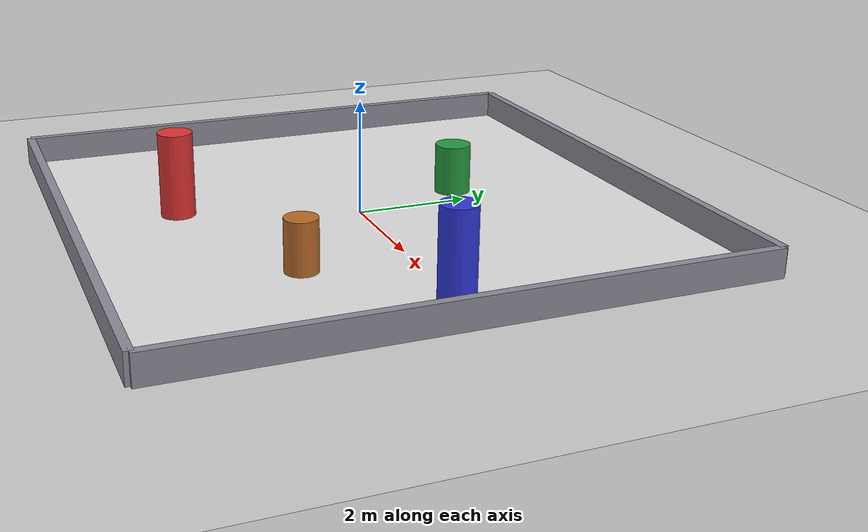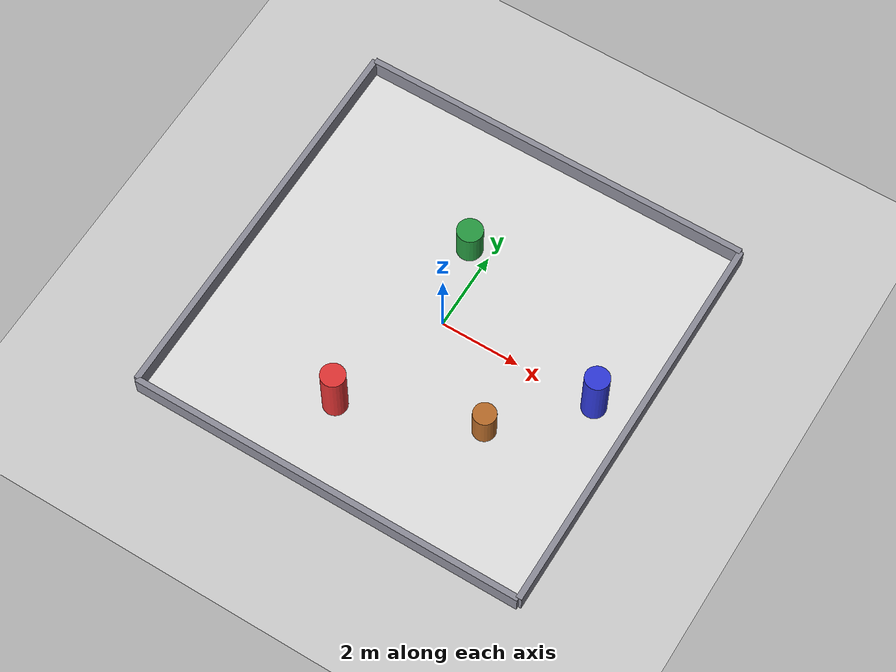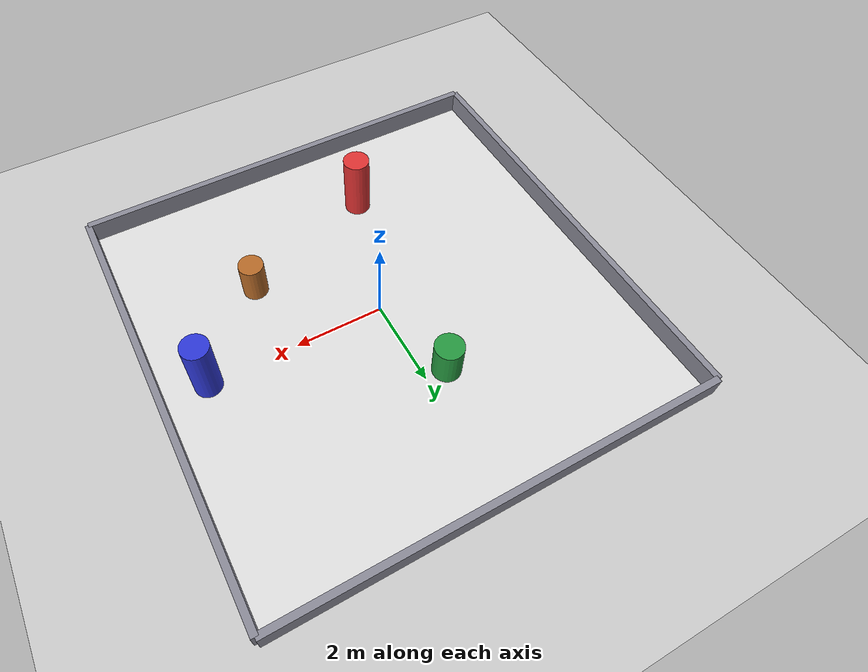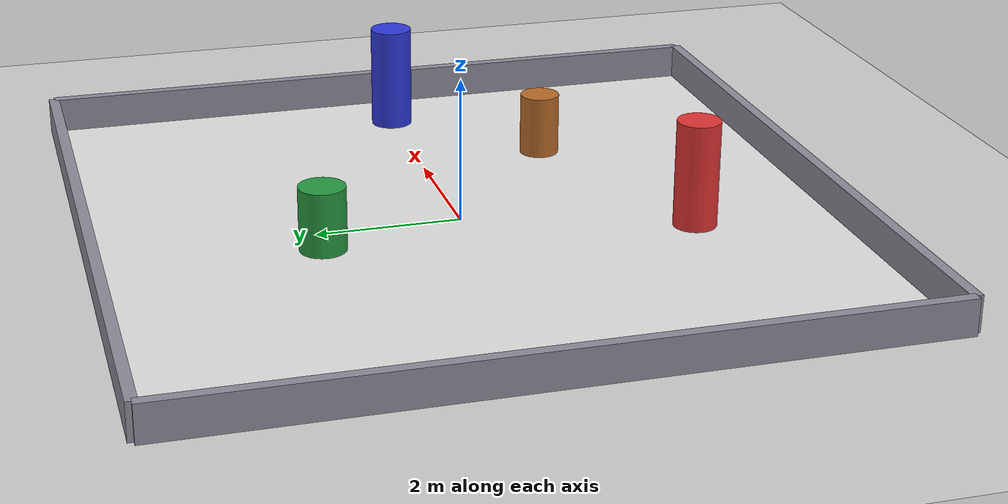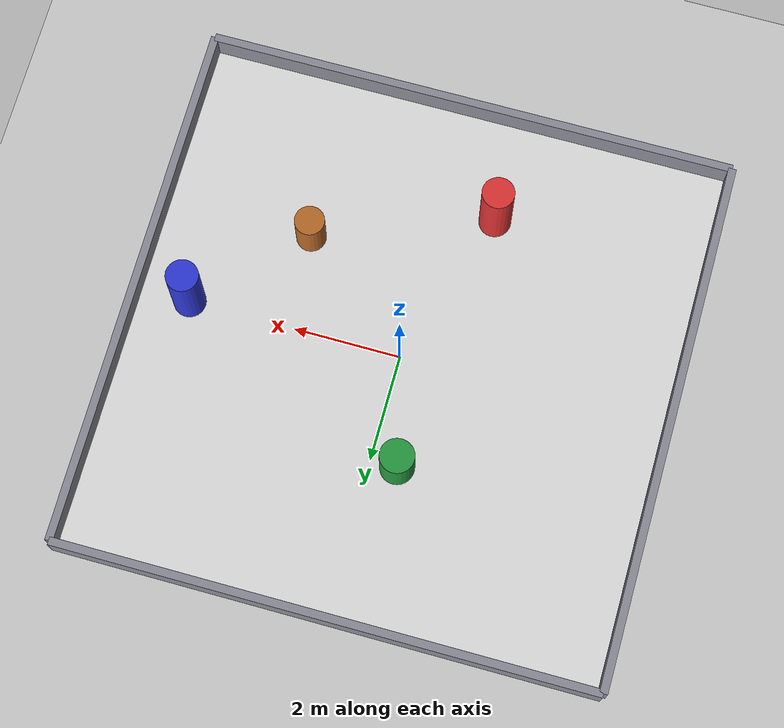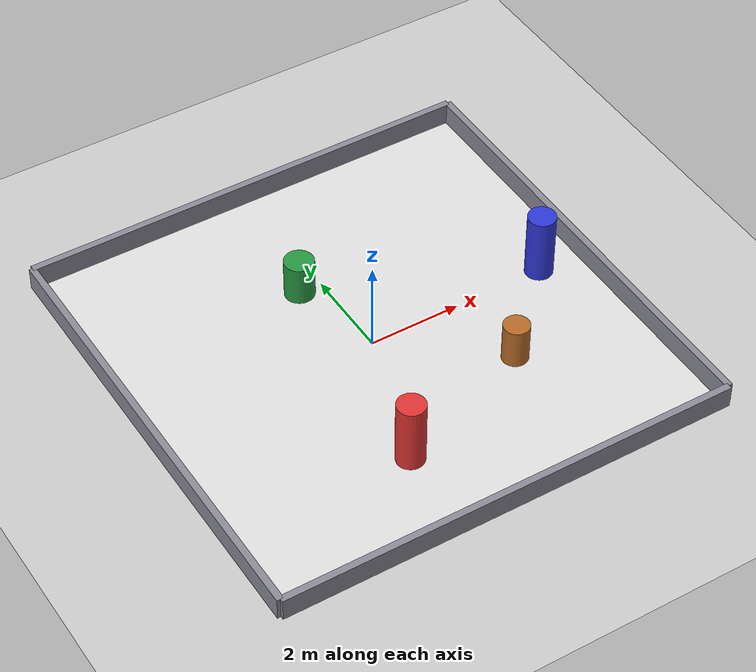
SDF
<?xml version="1.0"?>
<sdf version="1.6">
  <world name="dynamic_test">
    <gravity>0 0 -9.8</gravity>
    <magnetic_field>6e-06 2.3e-05 -4.2e-05</magnetic_field>
    <atmosphere type="adiabatic"/>

    <physics name="default_physics" type="ode">
      <max_step_size>0.001</max_step_size>
      <real_time_factor>1.0</real_time_factor>
      <real_time_update_rate>1000</real_time_update_rate>
    </physics>

    <scene>
      <ambient>0.45 0.45 0.45 1.0</ambient>
      <background>0.75 0.82 0.88 1.0</background>
      <shadows>false</shadows>
    </scene>

    <include>
      <uri>model://ground_plane</uri>
    </include>

    <include>
      <uri>model://sun</uri>
    </include>

    <model name="arena_floor">
      <static>true</static>
      <pose>0 0 0 0 0 0</pose>
      <link name="floor_link">
        <collision name="floor_collision">
          <geometry>
            <box>
              <size>10 10 0.02</size>
            </box>
          </geometry>
        </collision>
        <visual name="floor_visual">
          <geometry>
            <box>
              <size>10 10 0.02</size>
            </box>
          </geometry>
          <material>
            <ambient>0.88 0.88 0.88 1.0</ambient>
            <diffuse>0.88 0.88 0.88 1.0</diffuse>
          </material>
        </visual>
      </link>
    </model>

    <model name="north_wall">
      <static>true</static>
      <pose>0 5 0.25 0 0 0</pose>
      <link name="wall_link">
        <collision name="collision">
          <geometry>
            <box>
              <size>10 0.15 0.5</size>
            </box>
          </geometry>
        </collision>
        <visual name="visual">
          <geometry>
            <box>
              <size>10 0.15 0.5</size>
            </box>
          </geometry>
          <material>
            <ambient>0.55 0.55 0.60 1.0</ambient>
            <diffuse>0.55 0.55 0.60 1.0</diffuse>
          </material>
        </visual>
      </link>
    </model>

    <model name="south_wall">
      <static>true</static>
      <pose>0 -5 0.25 0 0 0</pose>
      <link name="wall_link">
        <collision name="collision">
          <geometry>
            <box>
              <size>10 0.15 0.5</size>
            </box>
          </geometry>
        </collision>
        <visual name="visual">
          <geometry>
            <box>
              <size>10 0.15 0.5</size>
            </box>
          </geometry>
          <material>
            <ambient>0.55 0.55 0.60 1.0</ambient>
            <diffuse>0.55 0.55 0.60 1.0</diffuse>
          </material>
        </visual>
      </link>
    </model>

    <model name="east_wall">
      <static>true</static>
      <pose>5 0 0.25 0 0 0</pose>
      <link name="wall_link">
        <collision name="collision">
          <geometry>
            <box>
              <size>0.15 10 0.5</size>
            </box>
          </geometry>
        </collision>
        <visual name="visual">
          <geometry>
            <box>
              <size>0.15 10 0.5</size>
            </box>
          </geometry>
          <material>
            <ambient>0.55 0.55 0.60 1.0</ambient>
            <diffuse>0.55 0.55 0.60 1.0</diffuse>
          </material>
        </visual>
      </link>
    </model>

    <model name="west_wall">
      <static>true</static>
      <pose>-5 0 0.25 0 0 0</pose>
      <link name="wall_link">
        <collision name="collision">
          <geometry>
            <box>
              <size>0.15 10 0.5</size>
            </box>
          </geometry>
        </collision>
        <visual name="visual">
          <geometry>
            <box>
              <size>0.15 10 0.5</size>
            </box>
          </geometry>
          <material>
            <ambient>0.55 0.55 0.60 1.0</ambient>
            <diffuse>0.55 0.55 0.60 1.0</diffuse>
          </material>
        </visual>
      </link>
    </model>

    <model name="static_cylinder_1">
      <static>true</static>
      <pose>-0.5 2.0 0.45 0 0 0</pose>
      <link name="obstacle_link">
        <collision name="collision">
          <geometry>
            <cylinder>
              <radius>0.32</radius>
              <length>0.9</length>
            </cylinder>
          </geometry>
        </collision>
        <visual name="visual">
          <geometry>
            <cylinder>
              <radius>0.32</radius>
              <length>0.9</length>
            </cylinder>
          </geometry>
          <material>
            <ambient>0.15 0.60 0.25 1.0</ambient>
            <diffuse>0.15 0.60 0.25 1.0</diffuse>
          </material>
        </visual>
      </link>
    </model>

    <model name="static_cylinder_2">
      <static>true</static>
      <pose>2.2 -1.8 0.45 0 0 0</pose>
      <link name="obstacle_link">
        <collision name="collision">
          <geometry>
            <cylinder>
              <radius>0.28</radius>
              <length>0.9</length>
            </cylinder>
          </geometry>
        </collision>
        <visual name="visual">
          <geometry>
            <cylinder>
              <radius>0.28</radius>
              <length>0.9</length>
            </cylinder>
          </geometry>
          <material>
            <ambient>0.72 0.42 0.16 1.0</ambient>
            <diffuse>0.72 0.42 0.16 1.0</diffuse>
          </material>
        </visual>
      </link>
    </model>

    <model name="obs1">
      <pose>-1.0 -3.0 0.75 0 0 0</pose>
      <link name="obs1_link">
        <gravity>true</gravity>
        <kinematic>true</kinematic>
        <self_collide>false</self_collide>
        <inertial>
          <mass>12.0</mass>
          <inertia>
            <ixx>2.52</ixx>
            <ixy>0.0</ixy>
            <ixz>0.0</ixz>
            <iyy>2.52</iyy>
            <iyz>0.0</iyz>
            <izz>0.54</izz>
          </inertia>
        </inertial>
        <collision name="collision">
          <geometry>
            <cylinder>
              <radius>0.3</radius>
              <length>1.5</length>
            </cylinder>
          </geometry>
          <surface>
            <friction>
              <ode>
                <mu>10.0</mu>
                <mu2>10.0</mu2>
                <slip1>0.0</slip1>
                <slip2>0.0</slip2>
              </ode>
            </friction>
            <bounce>
              <restitution_coefficient>0.0</restitution_coefficient>
              <threshold>1000000.0</threshold>
            </bounce>
            <contact>
              <ode>
                <kp>10000000.0</kp>
                <kd>100000.0</kd>
                <max_vel>0.0</max_vel>
                <min_depth>0.001</min_depth>
              </ode>
            </contact>
          </surface>
        </collision>
        <visual name="visual">
          <geometry>
            <cylinder>
              <radius>0.3</radius>
              <length>1.5</length>
            </cylinder>
          </geometry>
          <material>
            <ambient>0.88 0.20 0.20 1.0</ambient>
            <diffuse>0.88 0.20 0.20 1.0</diffuse>
          </material>
        </visual>
      </link>
      <plugin name="obs1_planar_move" filename="libgazebo_ros_planar_move.so">
        <ros>
          <namespace>/obs1</namespace>
          <remapping>cmd_vel:=cmd_vel</remapping>
          <remapping>odom:=odom</remapping>
        </ros>
        <update_rate>100</update_rate>
        <publish_rate>30</publish_rate>
        <publish_odom>false</publish_odom>
        <publish_odom_tf>false</publish_odom_tf>
        <odometry_frame>obs1_odom</odometry_frame>
        <robot_base_frame>obs1_link</robot_base_frame>
      </plugin>
    </model>

    <model name="obs2">
      <pose>4.0 0.0 0.75 0 0 0</pose>
      <link name="obs2_link">
        <gravity>true</gravity>
        <kinematic>true</kinematic>
        <self_collide>false</self_collide>
        <inertial>
          <mass>12.0</mass>
          <inertia>
            <ixx>2.52</ixx>
            <ixy>0.0</ixy>
            <ixz>0.0</ixz>
            <iyy>2.52</iyy>
            <iyz>0.0</iyz>
            <izz>0.54</izz>
          </inertia>
        </inertial>
        <collision name="collision">
          <geometry>
            <cylinder>
              <radius>0.3</radius>
              <length>1.5</length>
            </cylinder>
          </geometry>
          <surface>
            <friction>
              <ode>
                <mu>10.0</mu>
                <mu2>10.0</mu2>
                <slip1>0.0</slip1>
                <slip2>0.0</slip2>
              </ode>
            </friction>
            <bounce>
              <restitution_coefficient>0.0</restitution_coefficient>
              <threshold>1000000.0</threshold>
            </bounce>
            <contact>
              <ode>
                <kp>10000000.0</kp>
                <kd>100000.0</kd>
                <max_vel>0.0</max_vel>
                <min_depth>0.001</min_depth>
              </ode>
            </contact>
          </surface>
        </collision>
        <visual name="visual">
          <geometry>
            <cylinder>
              <radius>0.3</radius>
              <length>1.5</length>
            </cylinder>
          </geometry>
          <material>
            <ambient>0.18 0.22 0.85 1.0</ambient>
            <diffuse>0.18 0.22 0.85 1.0</diffuse>
          </material>
        </visual>
      </link>
      <plugin name="obs2_planar_move" filename="libgazebo_ros_planar_move.so">
        <ros>
          <namespace>/obs2</namespace>
          <remapping>cmd_vel:=cmd_vel</remapping>
          <remapping>odom:=odom</remapping>
        </ros>
        <update_rate>100</update_rate>
        <publish_rate>30</publish_rate>
        <publish_odom>false</publish_odom>
        <publish_odom_tf>false</publish_odom_tf>
        <odometry_frame>obs2_odom</odometry_frame>
        <robot_base_frame>obs2_link</robot_base_frame>
      </plugin>
    </model>
  </world>
</sdf>
